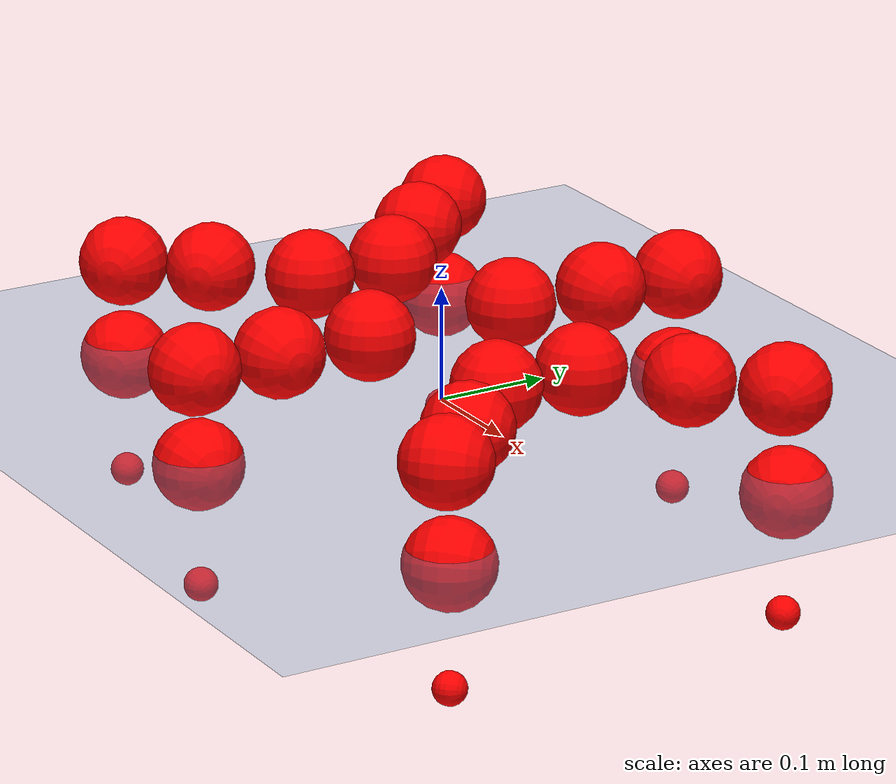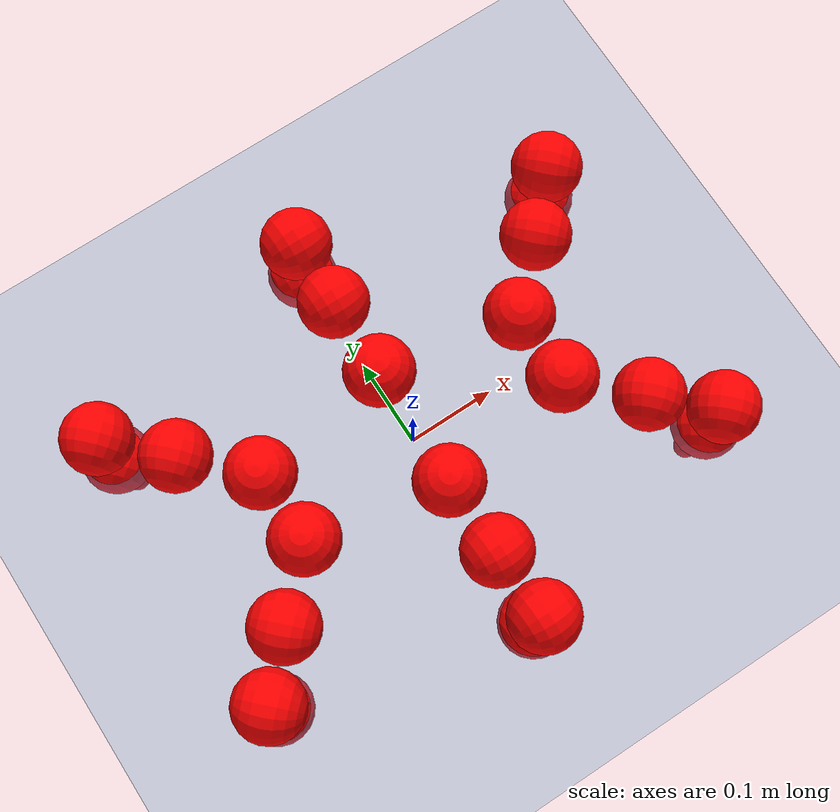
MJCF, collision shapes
<mujoco model="Golem">
  <compiler angle="radian" assetdir="assets" balanceinertia="true" inertiafromgeom="false"/>

  <option timestep="0.005" density="1.2" viscosity="2e-05"/>

  <size nkey="1"/>

  <visual>
    <quality shadowsize="8192"/>
    <map shadowclip="0.5"/>
  </visual>

  <default>
    <default class="/">
      <joint armature="0.01" damping="0.01" frictionloss="0.01"/>
      <geom contype="0" conaffinity="0" group="1" solref="-1000 -80"/>
      <site size="0.01 0.005 0.005" group="5"/>
      <general forcelimited="true" biastype="affine" gainprm="25" biasprm="0 -25 -0.5"/>
      <default class="visual">
        <geom type="mesh" group="2"/>
      </default>
      <default class="collision">
        <geom group="3"/>
      </default>
      <default class="foot">
        <geom size="0.01 0 0" condim="6" group="4" priority="1" solimp="0.015 1 0.01"/>
      </default>
      <default class="reward_collision_sphere">
        <geom group="5" rgba="1 0 0 1"/>
      </default>
    </default>
  </default>

  <asset>
    <texture type="skybox" colorspace="auto" name="//unnamed_texture_0" builtin="gradient" rgb1="0.95 0.95 0.95" rgb2="0.95 0.95 0.95" width="100" height="600"/>
    <texture type="2d" colorspace="auto" name="texplane" builtin="checker" rgb1="0.345 0.575 0.748" rgb2="0.345 0.575 0.748" markrgb="1 1 1" width="512" height="512"/>
    <material name="MatPlane" class="/" texture="texplane" texuniform="true" texrepeat="2 2" specular="0.9"/>
    <mesh name="body" class="/" file="body.stl" scale="0.001 0.001 0.001"/>
    <mesh name="coxa" class="/" file="coxa.stl" scale="0.001 0.001 0.001"/>
    <mesh name="femur" class="/" file="femur.stl" scale="0.001 0.001 0.001"/>
    <mesh name="tibia" class="/" file="tibia.stl" scale="0.001 0.001 0.001"/>
    <mesh name="tarsus" class="/" file="tarsus.stl" scale="0.001 0.001 0.001"/>
  </asset>

  <worldbody>
    <geom name="floor" class="/" size="100 100 0.125" type="plane" group="0" material="MatPlane"/>
    <light name="toplight_shadow" class="/" pos="0 0 5" dir="0.0990148 0.0990148 -0.990148" type="directional" ambient="0.04 0.04 0.04" diffuse="0.55 0.55 0.55" specular="0.12 0.12 0.12"/>
    <light name="toplight_fill" class="/" pos="0 0 5" dir="0.0990148 0.0990148 -0.990148" type="directional" castshadow="false" ambient="0.04 0.04 0.04" diffuse="0.3 0.3 0.3" specular="0.08 0.08 0.08"/>
    <body name="trunk" pos="-0.000392146 0.000144655 -0.00270678" quat="1 -9.34661e-05 -1.64197e-05 -7.59192e-05">
      <inertial pos="0.0012939 -0.000159946 -0.00076112" quat="0.999946 -0.00601351 -0.00849671 0.00027738" mass="3.54844" diaginertia="0.00990518 0.00239885 0.022626"/>
      <joint name="//unnamed_joint_0" type="free"/>
      <geom name="//unnamed_geom_1" class="/" pos="0 0 0.0753613" quat="1 0 0 0" type="mesh" rgba="0.9 0.9 0.9 1" mesh="body"/>
      <site name="imu" class="/" pos="0.130843 0.00113929 0.113028" size="0.00976423"/>
      <camera name="track" class="/" pos="0 -1.49496 0" quat="0.707107 0.707107 0 0" mode="trackcom"/>
      <camera name="ego_camera" class="/" pos="0.130555 0 0.117752" quat="-0.5 -0.5 0.5 0.5"/>
      <body name="coxa_RR" pos="-0.178088 -0.0612019 0.0744912" quat="0.382556 -0.00011961 -0.000192025 -0.923932">
        <inertial pos="-0.000551637 -0.00268321 0.000414588" quat="0.999986 0.00193975 -0.00398094 -0.0029372" mass="0.179602" diaginertia="0.00965819 0.00233594 0.0217373"/>
        <joint name="coxa_joint_RR" class="/" pos="0 0 0" axis="-0.00672416 0.00357493 -0.999971" range="-3.14161 3.1033" armature="0.00923508" damping="0.0102269" frictionloss="0.00948463"/>
        <geom name="//unnamed_geom_2" class="/" type="mesh" rgba="0.2 0.2 0.2 1" mesh="coxa"/>
        <geom name="//unnamed_geom_3" class="reward_collision_sphere" size="0.0390569" pos="-0.0301281 0 0"/>
        <body name="femur_RR" pos="0.0599123 0.000349615 -0.00111894" quat="0.500495 -0.499721 0.49984 0.499944">
          <inertial pos="0.00121928 0.000951983 -0.000930114" quat="1 0.000366887 0.000329623 -0.000172562" mass="0.185512" diaginertia="0.0102242 0.00234106 0.0226021"/>
          <joint name="femur_joint_RR" class="/" pos="0 0 0" axis="0.000670948 0.000402331 -1" range="-3.16065 3.08481" armature="0.00883153" damping="0" frictionloss="0.0107468"/>
          <geom name="//unnamed_geom_4" class="/" type="mesh" rgba="0.9 0.9 0.9 1" mesh="femur"/>
          <geom name="//unnamed_geom_5" class="reward_collision_sphere" size="0.0390569"/>
          <body name="tibia_RR" pos="0.000958043 -0.0785849 0.00283845" quat="-0.000191832 1 6.83849e-05 -0.000248151">
            <inertial pos="-0.00253946 -0.00129514 -1.3912e-05" quat="0.999938 0.00854327 -0.0043956 -0.00567009" mass="0.186036" diaginertia="0.0100419 0.0023633 0.02311"/>
            <joint name="tibia_joint_RR" class="/" pos="0 0 0" axis="-6.06899e-05 0.00203861 0.999998" range="-3.19432 3.1414" armature="0.00880207" damping="0" frictionloss="0.00962941"/>
            <geom name="//unnamed_geom_6" class="/" type="mesh" rgba="0.2 0.2 0.2 1" mesh="tibia"/>
            <geom name="//unnamed_geom_7" class="reward_collision_sphere" size="0.0390569"/>
            <body name="tarsus_RR" pos="0.0867932 0.000433222 -0.000753895" quat="1 -0.000293963 0.000211113 0.000362956">
              <inertial pos="0.0584715 0.00303455 -0.00196744" quat="0.498859 0.500064 0.501149 0.499925" mass="0.18444" diaginertia="0.0100337 0.00232853 0.0223453"/>
              <joint name="tarsus_joint_RR" class="/" pos="0 0 0" axis="0.00333324 0.00159475 0.999993" range="-3.15504 3.14259" armature="0.0109208" damping="0.0051099" frictionloss="0.0109182"/>
              <geom name="//unnamed_geom_8" class="/" type="mesh" rgba="0.9 0.9 0.9 1" mesh="tarsus"/>
              <geom name="foot_1" class="foot" size="0.00893036" pos="0.112478 0 0" quat="0 -0.707107 0 0.707107"/>
              <geom name="//unnamed_geom_10" class="reward_collision_sphere" size="0.0390569"/>
              <geom name="//unnamed_geom_11" class="reward_collision_sphere" size="0.0146464" pos="0.107959 0 0"/>
              <site name="foot_1" class="foot" pos="0.112478 0 0" quat="0 -0.707107 0 0.707107" size="0.00976423"/>
            </body>
          </body>
        </body>
      </body>
      <body name="coxa_RM" pos="7.21322e-05 -0.0994102 0.0732111" quat="0.707372 6.69076e-05 0.001306 -0.706841">
        <inertial pos="-0.00255407 -5.61916e-05 2.60381e-05" quat="0.999993 0.0029618 1.6226e-05 -0.00206871" mass="0.182663" diaginertia="0.0100252 0.00228486 0.0228634"/>
        <joint name="coxa_joint_RM" class="/" pos="0 0 0" axis="0.00109289 0.000878846 -0.999999" range="-3.19231 3.14425" armature="0.0100368" damping="0.00788722" frictionloss="0.00987097"/>
        <geom name="//unnamed_geom_12" class="/" type="mesh" rgba="0.2 0.2 0.2 1" mesh="coxa"/>
        <geom name="//unnamed_geom_13" class="reward_collision_sphere" size="0.0390569" pos="-0.0301281 0 0"/>
        <body name="femur_RM" pos="0.0565855 0.000801378 0.00109284" quat="0.498879 -0.500414 0.500516 0.500189">
          <inertial pos="0.000283867 -6.70525e-05 -0.000129994" quat="0.999911 0.00321251 0.00144986 -0.0128468" mass="0.192072" diaginertia="0.0105169 0.00233417 0.0233281"/>
          <joint name="femur_joint_RM" class="/" pos="0 0 0" axis="-0.00138597 -0.000817997 -0.999999" range="-3.14992 3.14338" armature="0.00952575" damping="0.00808646" frictionloss="0.00983365"/>
          <geom name="//unnamed_geom_14" class="/" type="mesh" rgba="0.9 0.9 0.9 1" mesh="femur"/>
          <geom name="//unnamed_geom_15" class="reward_collision_sphere" size="0.0390569"/>
          <body name="tibia_RM" pos="-0.0016333 -0.080774 0.00201825" quat="0.000198858 1 0.000457639 -0.000194384">
            <inertial pos="0.000596565 0.00227197 0.000565748" quat="0.999986 -0.00368134 -0.00378779 -0.000955227" mass="0.191975" diaginertia="0.010636 0.00241755 0.0237259"/>
            <joint name="tibia_joint_RM" class="/" pos="0 0 0" axis="0.00214919 0.00502561 0.999985" stiffness="0.000833454" range="-3.1018 3.09013" armature="0.0100976" damping="0" frictionloss="0.00992107"/>
            <geom name="//unnamed_geom_16" class="/" type="mesh" rgba="0.2 0.2 0.2 1" mesh="tibia"/>
            <geom name="//unnamed_geom_17" class="reward_collision_sphere" size="0.0390569"/>
            <body name="tarsus_RM" pos="0.0853299 -0.00278471 0.00158209" quat="0.999999 -0.000419054 0.000704277 0.000669745">
              <inertial pos="0.0603304 0.00302151 -0.000183398" quat="0.500914 0.499725 0.499344 0.500016" mass="0.175415" diaginertia="0.00996532 0.00224267 0.0218877"/>
              <joint name="tarsus_joint_RM" class="/" pos="0 0 0" axis="0.0043661 0.00344765 0.999985" range="-3.14985 3.15923" armature="0.0103478" damping="0.00266473" frictionloss="0.00982177"/>
              <geom name="//unnamed_geom_18" class="/" type="mesh" rgba="0.9 0.9 0.9 1" mesh="tarsus"/>
              <geom name="foot_2" class="foot" size="0.00974184" pos="0.112478 0 0" quat="0 -0.707107 0 0.707107"/>
              <geom name="//unnamed_geom_20" class="reward_collision_sphere" size="0.0390569"/>
              <geom name="//unnamed_geom_21" class="reward_collision_sphere" size="0.0146464" pos="0.107959 0 0"/>
              <site name="foot_2" class="foot" pos="0.112478 0 0" quat="0 -0.707107 0 0.707107" size="0.00976423"/>
            </body>
          </body>
        </body>
      </body>
      <body name="coxa_RF" pos="0.181001 -0.0625677 0.0745273" quat="0.924023 0.000376359 0.000803968 -0.382335">
        <inertial pos="-0.00271781 -0.00114848 0.00264587" quat="0.999983 -0.00552887 -0.00153711 -0.00135083" mass="0.190179" diaginertia="0.0103126 0.00233198 0.0228118"/>
        <joint name="coxa_joint_RF" class="/" pos="0 0 0" axis="-0.000606171 -0.00169655 -0.999998" range="-3.166 3.14004" armature="0.00849384" damping="0.0121104" frictionloss="0.0105139"/>
        <geom name="//unnamed_geom_22" class="/" type="mesh" rgba="0.2 0.2 0.2 1" mesh="coxa"/>
        <geom name="//unnamed_geom_23" class="reward_collision_sphere" size="0.0390569" pos="-0.0301281 0 0"/>
        <body name="femur_RF" pos="0.0620123 -7.02579e-05 -0.00190041" quat="0.500787 -0.499708 0.500453 0.49905">
          <inertial pos="0.00101477 -0.000578914 -0.00046479" quat="0.999995 -0.00115231 -0.000161551 -0.00285163" mass="0.174362" diaginertia="0.0102246 0.00227895 0.0215696"/>
          <joint name="femur_joint_RF" class="/" pos="0 0 0" axis="0.000379216 0.000905496 -1" range="-3.14228 3.08362" armature="0.00864413" damping="0" frictionloss="0.00848164"/>
          <geom name="//unnamed_geom_24" class="/" type="mesh" rgba="0.9 0.9 0.9 1" mesh="femur"/>
          <geom name="//unnamed_geom_25" class="reward_collision_sphere" size="0.0390569"/>
          <body name="tibia_RF" pos="-0.00108658 -0.0779509 0.00269041" quat="9.94473e-06 1 6.04978e-05 3.55434e-05">
            <inertial pos="-0.00249957 0.000963544 -0.000215986" quat="0.999999 0.000848095 -0.000190066 -0.0013508" mass="0.181829" diaginertia="0.00970778 0.00228235 0.0221452"/>
            <joint name="tibia_joint_RF" class="/" pos="0 0 0" axis="0.00554314 0.00435667 0.999975" range="-3.10929 3.14296" armature="0.00971649" damping="0" frictionloss="0.0103914"/>
            <geom name="//unnamed_geom_26" class="/" type="mesh" rgba="0.2 0.2 0.2 1" mesh="tibia"/>
            <geom name="//unnamed_geom_27" class="reward_collision_sphere" size="0.0390569"/>
            <body name="tarsus_RF" pos="0.0868014 -0.000220715 -0.00267906" quat="0.999999 0.000640511 0.000712156 -0.000321138">
              <inertial pos="0.0578171 -0.00123253 -0.000650964" quat="0.489878 0.500441 0.502494 0.50703" mass="0.182087" diaginertia="0.0101353 0.00237049 0.0216857"/>
              <joint name="tarsus_joint_RF" class="/" pos="0 0 0" axis="-0.00617483 0.00279932 0.999977" range="-3.12089 3.132" armature="0.00843597" damping="0" frictionloss="0.00848274"/>
              <geom name="//unnamed_geom_28" class="/" type="mesh" rgba="0.9 0.9 0.9 1" mesh="tarsus"/>
              <geom name="foot_3" class="foot" size="0.00980731" pos="0.112478 0 0" quat="0 -0.707107 0 0.707107"/>
              <geom name="//unnamed_geom_30" class="reward_collision_sphere" size="0.0390569"/>
              <geom name="//unnamed_geom_31" class="reward_collision_sphere" size="0.0146464" pos="0.107959 0 0"/>
              <site name="foot_3" class="foot" pos="0.112478 0 0" quat="0 -0.707107 0 0.707107" size="0.00976423"/>
            </body>
          </body>
        </body>
      </body>
      <body name="coxa_LR" pos="-0.179684 0.0642013 0.0731469" quat="0.38299 -1.11003e-05 0.000174726 0.923752">
        <inertial pos="-1.67411e-05 -0.000730306 0.000440833" quat="0.999907 0.00603089 0.00892663 0.00833597" mass="0.186542" diaginertia="0.0102303 0.00239814 0.0226176"/>
        <joint name="coxa_joint_LR" class="/" pos="0 0 0" axis="0.00398583 -0.0058614 -0.999975" stiffness="0.00420905" range="-3.14816 3.14904" armature="0.0109823" damping="0.0140232" frictionloss="0.00958064"/>
        <geom name="//unnamed_geom_32" class="/" type="mesh" rgba="0.2 0.2 0.2 1" mesh="coxa"/>
        <geom name="//unnamed_geom_33" class="reward_collision_sphere" size="0.0390569" pos="-0.0301281 0 0"/>
        <body name="femur_LR" pos="0.0589035 0.000900926 0.0017156" quat="0.500609 -0.499643 0.500291 0.499457">
          <inertial pos="-0.00262548 -0.00275647 0.00257809" quat="1 -4.03e-05 2.39459e-06 7.89059e-07" mass="0.194658" diaginertia="0.0104375 0.00243866 0.0230504"/>
          <joint name="femur_joint_LR" class="/" pos="0 0 0" axis="-0.0136312 -0.00539417 0.999893" range="-3.18058 3.09367" armature="0.0109638" damping="0" frictionloss="0.00850081"/>
          <geom name="//unnamed_geom_34" class="/" type="mesh" rgba="0.9 0.9 0.9 1" mesh="femur"/>
          <geom name="//unnamed_geom_35" class="reward_collision_sphere" size="0.0390569"/>
          <body name="tibia_LR" pos="0.00208929 -0.0843043 -0.000811144" quat="-7.33668e-05 1 -3.73155e-05 -2.31753e-05">
            <inertial pos="-0.000159479 -0.00269183 -7.43697e-05" quat="0.999991 -0.00133184 0.00223212 0.00323006" mass="0.176159" diaginertia="0.00977446 0.00230344 0.021309"/>
            <joint name="tibia_joint_LR" class="/" pos="0 0 0" axis="0.00904331 0.00943672 -0.999915" range="-3.14593 3.08466" armature="0.00980355" damping="0" frictionloss="0.0107274"/>
            <geom name="//unnamed_geom_36" class="/" type="mesh" rgba="0.2 0.2 0.2 1" mesh="tibia"/>
            <geom name="//unnamed_geom_37" class="reward_collision_sphere" size="0.0390569"/>
            <body name="tarsus_LR" pos="0.0915375 -0.00158922 -0.00125287" quat="1 -5.27321e-05 -0.000524177 -0.000744898">
              <inertial pos="0.0602877 0.000869198 -0.0022152" quat="0.49999 0.500226 0.501283 0.498497" mass="0.181707" diaginertia="0.0102522 0.00236574 0.0222694"/>
              <joint name="tarsus_joint_LR" class="/" pos="0 0 0" axis="0.00449051 0.000793622 -0.99999" range="-3.18834 3.14946" armature="0.00848686" damping="0.0286047" frictionloss="0.00953688"/>
              <geom name="//unnamed_geom_38" class="/" type="mesh" rgba="0.9 0.9 0.9 1" mesh="tarsus"/>
              <geom name="foot_4" class="foot" size="0.00963481" pos="0.112478 0 0" quat="0.707107 0 -0.707107 0"/>
              <geom name="//unnamed_geom_40" class="reward_collision_sphere" size="0.0390569"/>
              <geom name="//unnamed_geom_41" class="reward_collision_sphere" size="0.0146464" pos="0.107959 0 0"/>
              <site name="foot_4" class="foot" pos="0.112478 0 0" quat="0.707107 0 -0.707107 0" size="0.00976423"/>
            </body>
          </body>
        </body>
      </body>
      <body name="coxa_LM" pos="0.00221627 0.0971521 0.0780963" quat="0.707269 -8.56376e-06 0.000103112 0.706945">
        <inertial pos="0.00198022 -0.000460901 0.000426977" quat="0.99999 0.00266725 0.00255151 0.00256905" mass="0.179951" diaginertia="0.0105262 0.00232037 0.0223635"/>
        <joint name="coxa_joint_LM" class="/" pos="0 0 0" axis="-0.0115831 -0.00482982 -0.999921" range="-3.13206 3.19179" armature="0.00974376" damping="0.00483664" frictionloss="0.00964117"/>
        <geom name="//unnamed_geom_42" class="/" type="mesh" rgba="0.2 0.2 0.2 1" mesh="coxa"/>
        <geom name="//unnamed_geom_43" class="reward_collision_sphere" size="0.0390569" pos="-0.0301281 0 0"/>
        <body name="femur_LM" pos="0.0596616 -0.000195806 -0.00158434" quat="0.500771 -0.498954 0.500449 0.499823">
          <inertial pos="0.00223956 0.000895279 -0.00198166" quat="0.999997 0.000362715 0.000281171 -0.00247077" mass="0.198406" diaginertia="0.0106667 0.00241116 0.0240284"/>
          <joint name="femur_joint_LM" class="/" pos="0 0 0" axis="0.00899915 0.00470326 0.999948" stiffness="0.0115655" range="-3.19496 3.08464" armature="0.00954543" damping="0.00482869" frictionloss="0.0107255"/>
          <geom name="//unnamed_geom_44" class="/" type="mesh" rgba="0.9 0.9 0.9 1" mesh="femur"/>
          <geom name="//unnamed_geom_45" class="reward_collision_sphere" size="0.0390569"/>
          <body name="tibia_LM" pos="0.00160642 -0.0775269 -0.0014023" quat="8.97361e-05 1 0.000326307 -6.4436e-05">
            <inertial pos="0.00207382 -0.000759163 0.000621458" quat="0.999999 0.00117867 4.86599e-05 -2.80426e-05" mass="0.189581" diaginertia="0.0103424 0.00229483 0.0234278"/>
            <joint name="tibia_joint_LM" class="/" pos="0 0 0" axis="0.00486299 -0.00751253 -0.99996" range="-3.14885 3.13469" armature="0.00844178" damping="0" frictionloss="0.00949134"/>
            <geom name="//unnamed_geom_46" class="/" type="mesh" rgba="0.2 0.2 0.2 1" mesh="tibia"/>
            <geom name="//unnamed_geom_47" class="reward_collision_sphere" size="0.0390569"/>
            <body name="tarsus_LM" pos="0.0905094 -0.000565579 -0.00103696" quat="1 8.87985e-05 0.000252016 -0.000251761">
              <inertial pos="0.060908 0.000158639 0.00247296" quat="0.496888 0.50062 0.500936 0.501543" mass="0.185414" diaginertia="0.00988817 0.00240913 0.0226662"/>
              <joint name="tarsus_joint_LM" class="/" pos="0 0 0" axis="-0.00149398 -0.00484465 -0.999987" range="-3.12856 3.15022" armature="0.0098779" damping="0.00890689" frictionloss="0.00978072"/>
              <geom name="//unnamed_geom_48" class="/" type="mesh" rgba="0.9 0.9 0.9 1" mesh="tarsus"/>
              <geom name="foot_5" class="foot" size="0.00888495" pos="0.112478 0 0" quat="0.707107 0 -0.707107 0"/>
              <geom name="//unnamed_geom_50" class="reward_collision_sphere" size="0.0390569"/>
              <geom name="//unnamed_geom_51" class="reward_collision_sphere" size="0.0146464" pos="0.107959 0 0"/>
              <site name="foot_5" class="foot" pos="0.112478 0 0" quat="0.707107 0 -0.707107 0" size="0.00976423"/>
            </body>
          </body>
        </body>
      </body>
      <body name="coxa_LF" pos="0.181339 0.061122 0.0744043" quat="0.923362 -0.000135962 -0.000168648 0.38393">
        <inertial pos="0.000309515 1.41387e-06 0.00256083" quat="0.99999 -0.00363346 -0.00254328 -0.00017978" mass="0.185302" diaginertia="0.010418 0.00226133 0.0226419"/>
        <joint name="coxa_joint_LF" class="/" pos="0 0 0" axis="0.00971173 0.0116558 -0.999885" range="-3.16237 3.12632" armature="0.0095009" damping="0.0161377" frictionloss="0.00852692"/>
        <geom name="//unnamed_geom_52" class="/" type="mesh" rgba="0.2 0.2 0.2 1" mesh="coxa"/>
        <geom name="//unnamed_geom_53" class="reward_collision_sphere" size="0.0390569" pos="-0.0301281 0 0"/>
        <body name="femur_LF" pos="0.061239 -0.000684559 -0.000943107" quat="0.500001 -0.499974 0.499989 0.500036">
          <inertial pos="-0.000429452 0.000181471 0.00275709" quat="0.999952 0.00576885 0.00263141 0.00747703" mass="0.191317" diaginertia="0.00988493 0.00235509 0.0225382"/>
          <joint name="femur_joint_LF" class="/" pos="0 0 0" axis="-0.0123312 -0.00375787 0.999917" stiffness="0.00267201" range="-3.1541 3.13605" armature="0.00976959" damping="0.00942814" frictionloss="0.0110721"/>
          <geom name="//unnamed_geom_54" class="/" type="mesh" rgba="0.9 0.9 0.9 1" mesh="femur"/>
          <geom name="//unnamed_geom_55" class="reward_collision_sphere" size="0.0390569"/>
          <body name="tibia_LF" pos="0.00092107 -0.0793952 0.00272483" quat="-0.000306259 0.999999 0.00121302 0.000455135">
            <inertial pos="-0.0010038 0.000724417 -0.00251957" quat="0.999907 -0.00269224 0.0132782 0.00170705" mass="0.194753" diaginertia="0.0104913 0.00233722 0.0226341"/>
            <joint name="tibia_joint_LF" class="/" pos="0 0 0" axis="-0.00105953 0.000472258 -0.999999" range="-3.08982 3.14753" armature="0.0100137" damping="0.0163453" frictionloss="0.00971945"/>
            <geom name="//unnamed_geom_56" class="/" type="mesh" rgba="0.2 0.2 0.2 1" mesh="tibia"/>
            <geom name="//unnamed_geom_57" class="reward_collision_sphere" size="0.0390569"/>
            <body name="tarsus_LF" pos="0.0910387 0.00296808 -0.000998992" quat="1 8.6191e-05 -7.19383e-05 0.000366481">
              <inertial pos="0.0579365 0.000651206 0.000422515" quat="0.500471 0.499826 0.499148 0.500553" mass="0.178462" diaginertia="0.00983925 0.00223199 0.0227262"/>
              <joint name="tarsus_joint_LF" class="/" pos="0 0 0" axis="-0.0106075 -0.00982934 -0.999895" range="-3.13184 3.0884" armature="0.0111757" damping="0.0123409" frictionloss="0.0110286"/>
              <geom name="//unnamed_geom_58" class="/" type="mesh" rgba="0.9 0.9 0.9 1" mesh="tarsus"/>
              <geom name="foot_6" class="foot" size="0.00935121" pos="0.112478 0 0" quat="0.707107 0 -0.707107 0"/>
              <geom name="//unnamed_geom_60" class="reward_collision_sphere" size="0.0390569"/>
              <geom name="//unnamed_geom_61" class="reward_collision_sphere" size="0.0146464" pos="0.107959 0 0"/>
              <site name="foot_6" class="foot" pos="0.112478 0 0" quat="0.707107 0 -0.707107 0" size="0.00976423"/>
            </body>
          </body>
        </body>
      </body>
    </body>
  </worldbody>

  <contact>
    <pair class="/" geom1="floor" geom2="foot_1" name="//unnamed_contact_0"/>
    <pair class="/" geom1="floor" geom2="foot_2" name="//unnamed_contact_1"/>
    <pair class="/" geom1="floor" geom2="foot_3" name="//unnamed_contact_2"/>
    <pair class="/" geom1="floor" geom2="foot_4" name="//unnamed_contact_3"/>
    <pair class="/" geom1="floor" geom2="foot_5" name="//unnamed_contact_4"/>
    <pair class="/" geom1="floor" geom2="foot_6" name="//unnamed_contact_5"/>
  </contact>

  <actuator>
    <general name="coxa_joint_RR" class="/" joint="coxa_joint_RR" forcerange="-7.55018 7.55018" gainprm="23.2033" biasprm="0 -23.2033 -0.502031"/>
    <general name="femur_joint_RR" class="/" joint="femur_joint_RR" forcerange="-7.71634 7.71634" gainprm="23.2033" biasprm="0 -23.2033 -0.502031"/>
    <general name="tibia_joint_RR" class="/" joint="tibia_joint_RR" forcerange="-6.5068 6.5068" gainprm="23.2033" biasprm="0 -23.2033 -0.502031"/>
    <general name="tarsus_joint_RR" class="/" joint="tarsus_joint_RR" forcerange="-6.45342 6.45342" gainprm="23.2033" biasprm="0 -23.2033 -0.502031"/>
    <general name="coxa_joint_RM" class="/" joint="coxa_joint_RM" forcerange="-6.39602 6.39602" gainprm="23.2033" biasprm="0 -23.2033 -0.502031"/>
    <general name="femur_joint_RM" class="/" joint="femur_joint_RM" forcerange="-6.85175 6.85175" gainprm="23.2033" biasprm="0 -23.2033 -0.502031"/>
    <general name="tibia_joint_RM" class="/" joint="tibia_joint_RM" forcerange="-7.05467 7.05467" gainprm="23.2033" biasprm="0 -23.2033 -0.502031"/>
    <general name="tarsus_joint_RM" class="/" joint="tarsus_joint_RM" forcerange="-7.02296 7.02296" gainprm="23.2033" biasprm="0 -23.2033 -0.502031"/>
    <general name="coxa_joint_RF" class="/" joint="coxa_joint_RF" forcerange="-7.06094 7.06094" gainprm="23.2033" biasprm="0 -23.2033 -0.502031"/>
    <general name="femur_joint_RF" class="/" joint="femur_joint_RF" forcerange="-7.80745 7.80745" gainprm="23.2033" biasprm="0 -23.2033 -0.502031"/>
    <general name="tibia_joint_RF" class="/" joint="tibia_joint_RF" forcerange="-7.85929 7.85929" gainprm="23.2033" biasprm="0 -23.2033 -0.502031"/>
    <general name="tarsus_joint_RF" class="/" joint="tarsus_joint_RF" forcerange="-7.85368 7.85368" gainprm="23.2033" biasprm="0 -23.2033 -0.502031"/>
    <general name="coxa_joint_LR" class="/" joint="coxa_joint_LR" forcerange="-7.12976 7.12976" gainprm="23.2033" biasprm="0 -23.2033 -0.502031"/>
    <general name="femur_joint_LR" class="/" joint="femur_joint_LR" forcerange="-7.22153 7.22153" gainprm="23.2033" biasprm="0 -23.2033 -0.502031"/>
    <general name="tibia_joint_LR" class="/" joint="tibia_joint_LR" forcerange="-7.82748 7.82748" gainprm="23.2033" biasprm="0 -23.2033 -0.502031"/>
    <general name="tarsus_joint_LR" class="/" joint="tarsus_joint_LR" forcerange="-7.85769 7.85769" gainprm="23.2033" biasprm="0 -23.2033 -0.502031"/>
    <general name="coxa_joint_LM" class="/" joint="coxa_joint_LM" forcerange="-7.21756 7.21756" gainprm="23.2033" biasprm="0 -23.2033 -0.502031"/>
    <general name="femur_joint_LM" class="/" joint="femur_joint_LM" forcerange="-7.25084 7.25084" gainprm="23.2033" biasprm="0 -23.2033 -0.502031"/>
    <general name="tibia_joint_LM" class="/" joint="tibia_joint_LM" forcerange="-7.09994 7.09994" gainprm="23.2033" biasprm="0 -23.2033 -0.502031"/>
    <general name="tarsus_joint_LM" class="/" joint="tarsus_joint_LM" forcerange="-7.14662 7.14662" gainprm="23.2033" biasprm="0 -23.2033 -0.502031"/>
    <general name="coxa_joint_LF" class="/" joint="coxa_joint_LF" forcerange="-7.21145 7.21145" gainprm="23.2033" biasprm="0 -23.2033 -0.502031"/>
    <general name="femur_joint_LF" class="/" joint="femur_joint_LF" forcerange="-7.84616 7.84616" gainprm="23.2033" biasprm="0 -23.2033 -0.502031"/>
    <general name="tibia_joint_LF" class="/" joint="tibia_joint_LF" forcerange="-7.81666 7.81666" gainprm="23.2033" biasprm="0 -23.2033 -0.502031"/>
    <general name="tarsus_joint_LF" class="/" joint="tarsus_joint_LF" forcerange="-7.03547 7.03547" gainprm="23.2033" biasprm="0 -23.2033 -0.502031"/>
  </actuator>

  <sensor>
    <gyro site="imu" name="imu_angular_velocity"/>
    <velocimeter site="imu" name="imu_linear_velocity"/>
    <framelinvel objtype="site" objname="foot_1" name="foot_1_global_linear_velocity"/>
    <framelinvel objtype="site" objname="foot_2" name="foot_2_global_linear_velocity"/>
    <framelinvel objtype="site" objname="foot_3" name="foot_3_global_linear_velocity"/>
    <framelinvel objtype="site" objname="foot_4" name="foot_4_global_linear_velocity"/>
    <framelinvel objtype="site" objname="foot_5" name="foot_5_global_linear_velocity"/>
    <framelinvel objtype="site" objname="foot_6" name="foot_6_global_linear_velocity"/>
  </sensor>

  <keyframe>
    <key name="home" qpos="0 0 0.1457 1 0 0 0 0 0 0 0 0 0 0 0 0 0 0 0 0 0 0 0 0 0 0 0 0 0 0 0"/>
  </keyframe>
</mujoco>
